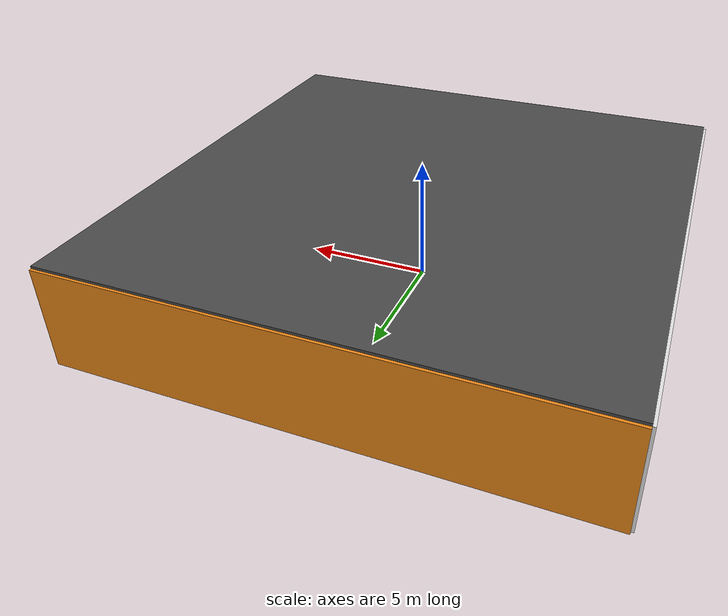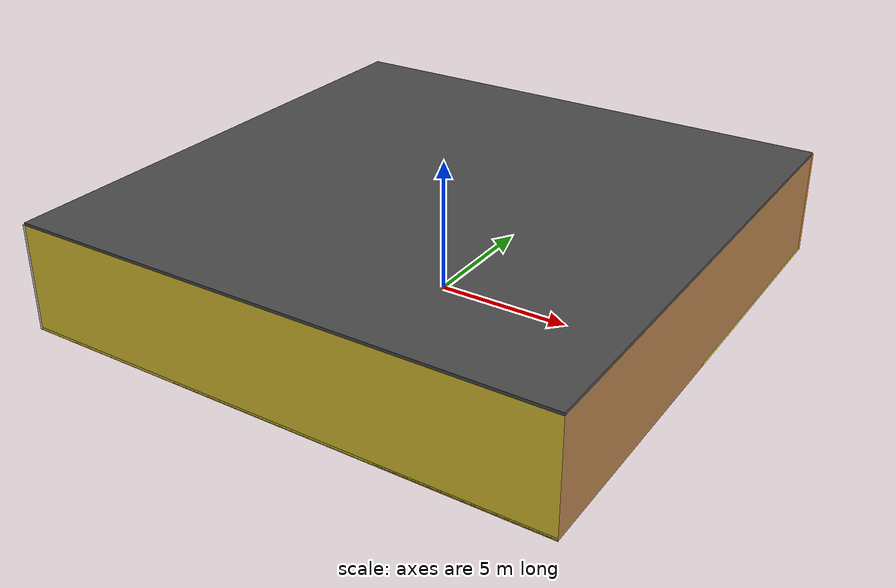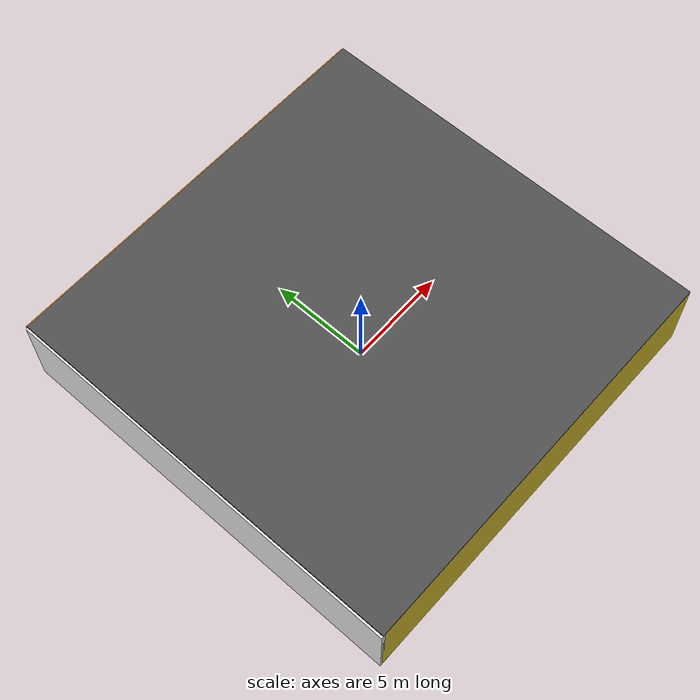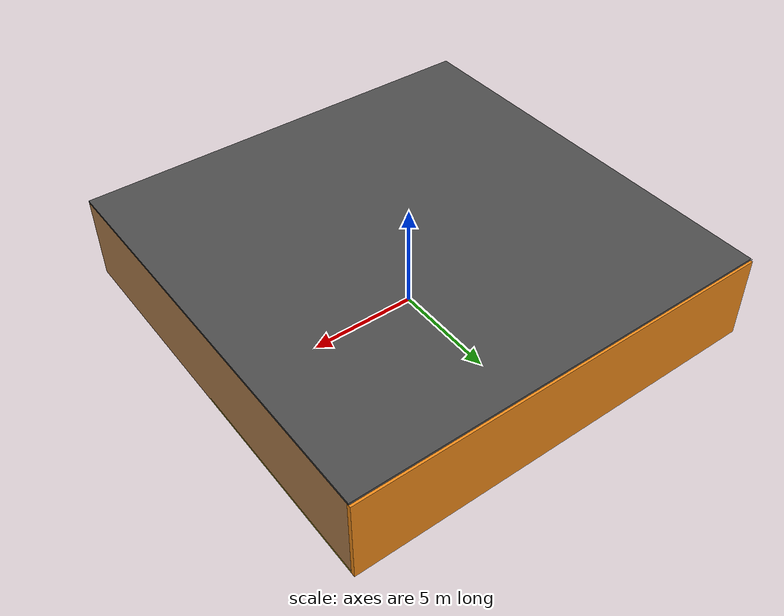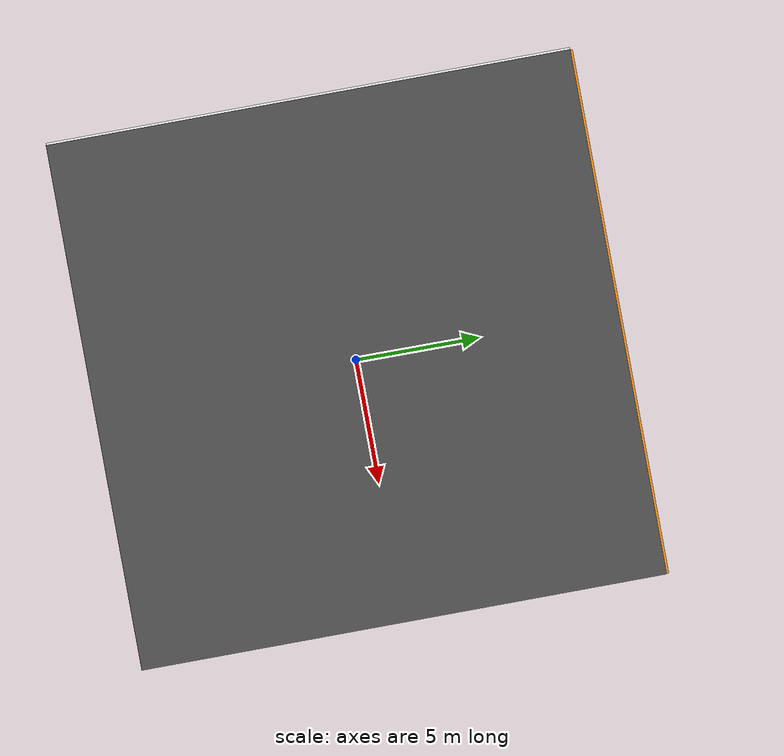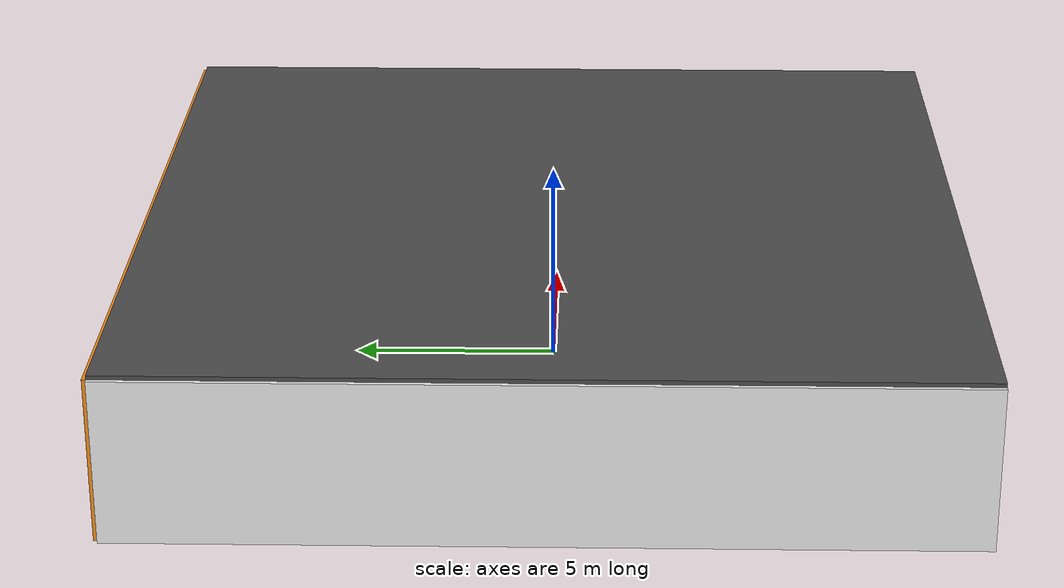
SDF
<sdf version="1.4">
 <world name="default">
  <physics type="ode">
   <max_step_size>0.001</max_step_size>
   <real_time_factor>1</real_time_factor>
   <real_time_update_rate>1000</real_time_update_rate>
   <gravity>0 0 -9.8</gravity>
  </physics>
  <scene><ambient>0.4 0.4 0.4 1</ambient><background>0.7 0.7 0.7 1</background><shadows>1</shadows></scene>
  <model name="Surrounding">
   <static>1</static>
   <link name="Ceiling">
    <collision name="Ceiling_Collision"><geometry><box><size>20 20 0.1</size></box></geometry></collision>
    <visual name="Ceiling_Visual">
     <geometry><box><size>20 20 0.1</size></box></geometry>
     <material>
      <script><uri>file://media/materials/scripts/gazebo.material</uri><name>Gazebo/Road</name></script>
     </material>
    </visual>
    <pose>0 0 4.05 0 0 0</pose>
   </link>
   <link name="Wall_South">
    <collision name="Wall_South_Collision">
     <geometry><box><size>20 0 4</size></box></geometry>
     <pose>0 0 2 0 -0 0</pose>
    </collision>
    <visual name="Wall_South_Visual">
     <pose>0 0 2 0 -0 0</pose>
     <geometry><box><size>20 0 4</size></box></geometry>
     <material>
      <script><uri>file://media/materials/scripts/gazebo.material</uri><name>Gazebo/ZincYellow</name></script>
     </material>
    </visual>
    <velocity_decay><linear>0</linear><angular>0</angular></velocity_decay>
    <pose>0 -10 0 0 -0 0</pose>
   </link>
   <link name="Wall_East">
    <collision name="Wall_21_Collision">
     <geometry><box><size>20 0 4</size></box></geometry>
     <pose>0 0 2 0 -0 0</pose>
    </collision>
    <visual name="Wall_21_Visual">
     <pose>0 0 2 0 -0 0</pose>
     <geometry><box><size>20 0 4</size></box></geometry>
     <material>
      <script><uri>file://media/materials/scripts/gazebo.material</uri><name>Gazebo/Wood</name></script>
     </material>
    </visual>
    <velocity_decay><linear>0</linear><angular>0</angular></velocity_decay>
    <pose>10 0 0 0 -0 1.5708</pose>
   </link>
   <link name="Wall_North">
    <collision name="Wall_22_Collision">
     <geometry><box><size>20 0.2 4</size></box></geometry>
     <pose>0 0 2 0 -0 0</pose>
    </collision>
    <visual name="Wall_22_Visual">
     <pose>0 0 2 0 -0 0</pose>
     <geometry><box><size>20 0.2 4</size></box></geometry>
     <material>
      <script><uri>file://media/materials/scripts/gazebo.material</uri><name>Gazebo/Orange</name></script>
     </material>
    </visual>
    <velocity_decay><linear>0</linear><angular>0</angular></velocity_decay>
    <pose>0 10 0 0 -0 0</pose>
   </link>
   <link name="Wall_West">
    <collision name="Wall_23_Collision">
     <geometry><box><size>20 0.2 4</size></box></geometry>
     <pose>0 0 2 0 -0 0</pose>
    </collision>
    <visual name="Wall_23_Visual">
     <pose>0 0 2 0 -0 0</pose>
     <geometry><box><size>20 0.2 4</size></box></geometry>
     <material>
      <script><uri>file://media/materials/scripts/gazebo.material</uri><name>Gazebo/White</name></script>
     </material>
    </visual>
    <velocity_decay><linear>0</linear><angular>0</angular></velocity_decay>
    <pose>-10 0 0 0 0 -1.5708</pose>
   </link>
   <link name="Ground_link">
    <collision name="collision">
     <pose>0 0 .05 0 -0 0</pose>
     <geometry><box><size>20 20 0.1</size></box></geometry>
    </collision>
    <visual name="visual">
     <pose>0 0 .05 0 -0 0</pose>
     <geometry><box><size>20 20 0.1</size></box></geometry>
     <material>
      <script><uri>file://media/materials/scripts/gazebo.material</uri><name>Gazebo/ZincYellow</name></script>
     </material>
    </visual>
   </link>
   <static>1</static>
  </model>
  <spherical_coordinates>
   <surface_model>EARTH_WGS84</surface_model>
   <latitude_deg>0</latitude_deg>
   <longitude_deg>0</longitude_deg>
   <elevation>0</elevation>
   <heading_deg>0</heading_deg>
  </spherical_coordinates>
  <light name="lightball_0" type="diffuse">
   <diffuse>0.8 0.8 0.8 1</diffuse>
   <specular>0.2 0.2 0.2 1</specular>
   <attenuation>
    <range>100</range>
    <constant>0.7</constant>
    <linear>0.01</linear>
    <quadratic>0.001</quadratic>
   </attenuation>
   <direction>-0.5 0.1 -0.9</direction>
   <pose>2.35395835259 -4.93484892447 1.26998587539 0 0 0</pose>
  </light>
  <light name="lightball_1" type="diffuse">
   <diffuse>0.8 0.8 0.8 1</diffuse>
   <specular>0.2 0.2 0.2 1</specular>
   <attenuation>
    <range>100</range>
    <constant>0.7</constant>
    <linear>0.01</linear>
    <quadratic>0.001</quadratic>
   </attenuation>
   <direction>-0.5 0.1 -0.9</direction>
   <pose>-3.25406923126 7.15823902477 3.331463044 0 0 0</pose>
  </light>
  <light name="lightball_2" type="diffuse">
   <diffuse>0.8 0.8 0.8 1</diffuse>
   <specular>0.2 0.2 0.2 1</specular>
   <attenuation>
    <range>100</range>
    <constant>0.7</constant>
    <linear>0.01</linear>
    <quadratic>0.001</quadratic>
   </attenuation>
   <direction>-0.5 0.1 -0.9</direction>
   <pose>-7.85696043982 -2.86238016781 0.505351868673 0 0 0</pose>
  </light>
  <light name="lightball_3" type="diffuse">
   <diffuse>0.8 0.8 0.8 1</diffuse>
   <specular>0.2 0.2 0.2 1</specular>
   <attenuation>
    <range>100</range>
    <constant>0.7</constant>
    <linear>0.01</linear>
    <quadratic>0.001</quadratic>
   </attenuation>
   <direction>-0.5 0.1 -0.9</direction>
   <pose>6.08225586591 -7.41532694606 3.08358706182 0 0 0</pose>
  </light>
  <light name="lightball_4" type="diffuse">
   <diffuse>0.8 0.8 0.8 1</diffuse>
   <specular>0.2 0.2 0.2 1</specular>
   <attenuation>
    <range>100</range>
    <constant>0.7</constant>
    <linear>0.01</linear>
    <quadratic>0.001</quadratic>
   </attenuation>
   <direction>-0.5 0.1 -0.9</direction>
   <pose>-9.23929942282 0.0325491037347 3.23480831903 0 0 0</pose>
  </light>
  <light name="lightball_5" type="diffuse">
   <diffuse>0.8 0.8 0.8 1</diffuse>
   <specular>0.2 0.2 0.2 1</specular>
   <attenuation>
    <range>100</range>
    <constant>0.7</constant>
    <linear>0.01</linear>
    <quadratic>0.001</quadratic>
   </attenuation>
   <direction>-0.5 0.1 -0.9</direction>
   <pose>-4.90046510059 -6.09133169152 1.9234408274 0 0 0</pose>
  </light>
  <light name="lightball_6" type="diffuse">
   <diffuse>0.8 0.8 0.8 1</diffuse>
   <specular>0.2 0.2 0.2 1</specular>
   <attenuation>
    <range>100</range>
    <constant>0.7</constant>
    <linear>0.01</linear>
    <quadratic>0.001</quadratic>
   </attenuation>
   <direction>-0.5 0.1 -0.9</direction>
   <pose>4.72087783958 1.34793380807 3.59020850671 0 0 0</pose>
  </light>
  <include><uri>model://cabinet</uri><pose>-6.67340132434 5.60296767961 0 0 0 2.53383243326</pose></include>
  <include><uri>model://cabinet</uri><pose>-1.13298941629 8.38468602365 0 0 0 3.12503303174</pose></include>
  <include><uri>model://cabinet</uri><pose>0.578761548037 -7.46260397013 0 0 0 0.696760815223</pose></include>
  <include><uri>model://table</uri><pose>1.53954605059 -1.93052595916 0 0 0 1.20660689435</pose></include>
  <include><uri>model://cabinet</uri><pose>1.07257978314 2.14030724515 0 0 0 1.93916906558</pose></include>
  <include><uri>model://table</uri><pose>4.91368061297 5.51505279145 0 0 0 0.33041978965</pose></include>
  <include><uri>model://cabinet</uri><pose>7.76772342968 2.23196947437 0 0 0 0.451630141594</pose></include>
 </world>
</sdf>

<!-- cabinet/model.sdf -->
<sdf version="1.5">
  <model name="cabinet">
    <static>true</static>
    <link name="cabinet_bottom_plate">
      <inertial>
        <pose>0 0 -1 0 0 0</pose>
        <inertia>
          <ixx>2.050000</ixx>
          <ixy>0</ixy>
          <ixz>0</ixz>
          <iyy>2.050000</iyy>
          <iyz>0</iyz>
          <izz>2.050000</izz>
        </inertia>
        <mass>25.000000</mass>
      </inertial>
      <collision name="cabinet_bottom_plate_geom">
        <pose>0 0 0.010000 0 0 0</pose>
        <geometry>
          <box>
            <size>0.450000 0.450000 0.020000</size>
          </box>
        </geometry>
      </collision>
      <visual name="cabinet_bottom_plate_geom_visual">
        <pose>0 0 0.010000 0 0 0</pose>
        <geometry>
          <box>
            <size>0.450000 0.450000 0.020000</size>
          </box>
        </geometry>
        <material>
          <script>
            <uri>model://media/materials/scripts/gazebo.material</uri>
            <name>Gazebo/Wood</name>
          </script>
        </material>
      </visual>
      <collision name="cabinet_bottom_plate_geom_cabinet_back_plate">
        <pose>0.235000 0 0.510000 0 0 0</pose>
        <geometry>
          <box>
            <size>0.020000 0.450000 1.020000</size>
          </box>
        </geometry>
      </collision>
      <visual name="cabinet_bottom_plate_geom_cabinet_back_plate_visual">
        <pose>0.235000 0 0.510000 0 0 0</pose>
        <geometry>
          <box>
            <size>0.020000 0.450000 1.020000</size>
          </box>
        </geometry>
        <material>
          <script>
            <uri>model://media/materials/scripts/gazebo.material</uri>
            <name>Gazebo/Wood</name>
          </script>
        </material>
      </visual>
      <collision name="cabinet_bottom_plate_geom_cabinet_left_plate">
        <pose>0 0.235000 0.510000 0 0 0</pose>
        <geometry>
          <box>
            <size>0.450000 0.020000 1.020000</size>
          </box>
        </geometry>
      </collision>
      <visual name="cabinet_bottom_plate_geom_cabinet_left_plate_visual">
        <pose>0 0.235000 0.510000 0 0 0</pose>
        <geometry>
          <box>
            <size>0.450000 0.020000 1.020000</size>
          </box>
        </geometry>
        <material>
          <script>
            <uri>model://media/materials/scripts/gazebo.material</uri>
            <name>Gazebo/Wood</name>
          </script>
        </material>
      </visual>
      <collision name="cabinet_bottom_plate_geom_cabinet_middle_plate">
        <pose>0 0 0.510000 0 0 0</pose>
        <geometry>
          <box>
            <size>0.450000 0.450000 0.020000</size>
          </box>
        </geometry>
      </collision>
      <visual name="cabinet_bottom_plate_geom_cabinet_middle_plate_visual">
        <pose>0 0 0.510000 0 0 0</pose>
        <geometry>
          <box>
            <size>0.450000 0.450000 0.020000</size>
          </box>
        </geometry>
        <material>
          <script>
            <uri>model://media/materials/scripts/gazebo.material</uri>
            <name>Gazebo/Wood</name>
          </script>
        </material>
      </visual>
      <collision name="cabinet_bottom_plate_geom_cabinet_right_plate">
        <pose>0 -0.235000 0.510000 0 0 0</pose>
        <geometry>
          <box>
            <size>0.450000 0.020000 1.020000</size>
          </box>
        </geometry>
      </collision>
      <visual name="cabinet_bottom_plate_geom_cabinet_right_plate_visual">
        <pose>0 -0.235000 0.510000 0 0 0</pose>
        <geometry>
          <box>
            <size>0.450000 0.020000 1.020000</size>
          </box>
        </geometry>
        <material>
          <script>
            <uri>model://media/materials/scripts/gazebo.material</uri>
            <name>Gazebo/Wood</name>
          </script>
        </material>
      </visual>
      <collision name="cabinet_bottom_plate_geom_cabinet_top_plate">
        <pose>0 0 1.010000 0 0 0</pose>
        <geometry>
          <box>
            <size>0.450000 0.450000 0.020000</size>
          </box>
        </geometry>
      </collision>
      <visual name="cabinet_bottom_plate_geom_cabinet_top_plate_visual">
        <pose>0 0 1.010000 0 0 0</pose>
        <geometry>
          <box>
            <size>0.450000 0.450000 0.020000</size>
          </box>
        </geometry>
        <material>
          <script>
            <uri>model://media/materials/scripts/gazebo.material</uri>
            <name>Gazebo/Wood</name>
          </script>
        </material>
      </visual>
    </link>
  </model>
</sdf>

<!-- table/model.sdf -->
<sdf version="1.5">
  <model name="table">
    <static>true</static>
    <link name="link">
      <collision name="surface">
        <pose>0 0 1.0 0 0 0</pose>
        <geometry>
          <box>
            <size>1.5 0.8 0.03</size>
          </box>
        </geometry>
        <surface>
          <friction>
            <ode>
              <mu>0.6</mu>
              <mu2>0.6</mu2>
            </ode>
          </friction>
        </surface>
      </collision>
      <visual name="visual1">
        <pose>0 0 1.0 0 0 0</pose>
        <geometry>
          <box>
            <size>1.5 0.8 0.03</size>
          </box>
        </geometry>
        <material>
          <script>
            <uri>model://media/materials/scripts/gazebo.material</uri>
            <name>Gazebo/Wood</name>
          </script>
        </material>
      </visual>
      <collision name="front_left_leg">
        <pose>0.68 0.38 0.5 0 0 0</pose>
        <geometry>
          <cylinder>
            <radius>0.02</radius>
            <length>1.0</length>
          </cylinder>
        </geometry>
      </collision>
      <visual name="front_left_leg">
        <pose>0.68 0.38 0.5 0 0 0</pose>
        <geometry>
          <cylinder>
            <radius>0.02</radius>
            <length>1.0</length>
          </cylinder>
        </geometry>
        <material>
          <script>
            <uri>model://media/materials/scripts/gazebo.material</uri>
            <name>Gazebo/Grey</name>
          </script>
        </material>
      </visual>
      <collision name="front_right_leg">
        <pose>0.68 -0.38 0.5 0 0 0</pose>
        <geometry>
          <cylinder>
            <radius>0.02</radius>
            <length>1.0</length>
          </cylinder>
        </geometry>
      </collision>
      <visual name="front_right_leg">
        <pose>0.68 -0.38 0.5 0 0 0</pose>
        <geometry>
          <cylinder>
            <radius>0.02</radius>
            <length>1.0</length>
          </cylinder>
        </geometry>
        <material>
          <script>
            <uri>model://media/materials/scripts/gazebo.material</uri>
            <name>Gazebo/Grey</name>
          </script>
        </material>
      </visual>
      <collision name="back_right_leg">
        <pose>-0.68 -0.38 0.5 0 0 0</pose>
        <geometry>
          <cylinder>
            <radius>0.02</radius>
            <length>1.0</length>
          </cylinder>
        </geometry>
      </collision>
      <visual name="back_right_leg">
        <pose>-0.68 -0.38 0.5 0 0 0</pose>
        <geometry>
          <cylinder>
            <radius>0.02</radius>
            <length>1.0</length>
          </cylinder>
        </geometry>
        <material>
          <script>
            <uri>model://media/materials/scripts/gazebo.material</uri>
            <name>Gazebo/Grey</name>
          </script>
        </material>
      </visual>
      <collision name="back_left_leg">
        <pose>-0.68 0.38 0.5 0 0 0</pose>
        <geometry>
          <cylinder>
            <radius>0.02</radius>
            <length>1.0</length>
          </cylinder>
        </geometry>
      </collision>
      <visual name="back_left_leg">
        <pose>-0.68 0.38 0.5 0 0 0</pose>
        <geometry>
          <cylinder>
            <radius>0.02</radius>
            <length>1.0</length>
          </cylinder>
        </geometry>
        <material>
          <script>
            <uri>model://media/materials/scripts/gazebo.material</uri>
            <name>Gazebo/Grey</name>
          </script>
        </material>
      </visual>
    </link>
  </model>
</sdf>
